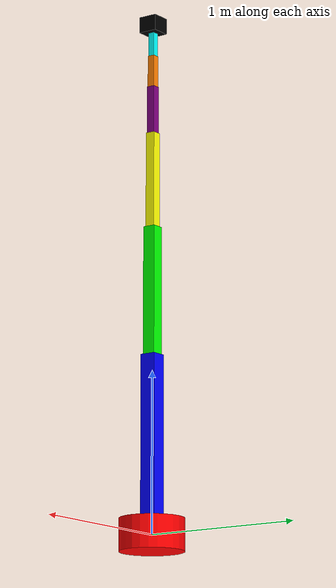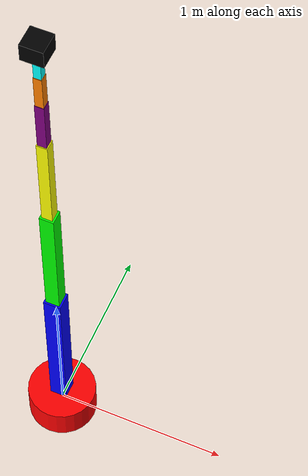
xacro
<?xml version="1.0"?>
<robot xmlns:xacro="http://www.ros.org/wiki/xacro" name="simple_arm">
    <xacro:arg name="initial_positions_file" default="initial_positions.yaml" />

    <!-- Import simple_arm urdf file -->
    <xacro:include filename="$(find my_arm_description)/urdf/simple_arm_moveit_clean.urdf" />

    <!-- Import control_xacro -->
    <xacro:include filename="simple_arm.ros2_control.xacro" />

    <xacro:simple_arm_ros2_control name="FakeSystem" initial_positions_file="$(arg initial_positions_file)"/>

</robot>

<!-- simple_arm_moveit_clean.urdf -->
<!-- |    This document was autogenerated by xacro from /home/sumit-jangra/ros2_ws/src/my_arm_description/urdf/simple_arm_moveit_clean.urdf.xacro | -->
<!-- |    EDITING THIS FILE BY HAND IS NOT RECOMMENDED                                 | -->
<robot name="simple_arm">
  <!-- BASE LINK -->
  <link name="base_link">
    <visual>
      <geometry>
        <cylinder length="0.2" radius="0.2"/>
      </geometry>
      <material name="red">
        <color rgba="1 0 0 1"/>
      </material>
    </visual>
  </link>
  <!-- LINK 1 -->
  <link name="link1">
    <visual>
      <origin rpy="0 0 0" xyz="0 0 0.5"/>
      <geometry>
        <box size="0.1 0.1 1.0"/>
      </geometry>
      <material name="blue">
        <color rgba="0 0 1 1"/>
      </material>
    </visual>
  </link>
  <!-- LINK 2 -->
  <link name="link2">
    <visual>
      <origin rpy="0 0 0" xyz="0 0 0.4"/>
      <geometry>
        <box size="0.08 0.08 0.8"/>
      </geometry>
      <material name="green">
        <color rgba="0 1 0 1"/>
      </material>
    </visual>
  </link>
  <!-- LINK 3 -->
  <link name="link3">
    <visual>
      <origin rpy="0 0 0" xyz="0 0 0.3"/>
      <geometry>
        <box size="0.06 0.06 0.6"/>
      </geometry>
      <material name="yellow">
        <color rgba="1 1 0 1"/>
      </material>
    </visual>
  </link>
  <!-- LINK 4 -->
  <link name="link4">
    <visual>
      <origin rpy="0 0 0" xyz="0 0 0.15"/>
      <geometry>
        <box size="0.05 0.05 0.3"/>
      </geometry>
      <material name="purple">
        <color rgba="0.5 0 0.5 1"/>
      </material>
    </visual>
  </link>
  <!-- LINK 5 -->
  <link name="link5">
    <visual>
      <origin rpy="0 0 0" xyz="0 0 0.1"/>
      <geometry>
        <box size="0.045 0.045 0.2"/>
      </geometry>
      <material name="orange">
        <color rgba="1 0.5 0 1"/>
      </material>
    </visual>
  </link>
  <!-- LINK 6 -->
  <link name="link6">
    <visual>
      <origin rpy="0 0 0" xyz="0 0 0.075"/>
      <geometry>
        <box size="0.04 0.04 0.15"/>
      </geometry>
      <material name="cyan">
        <color rgba="0 1 1 1"/>
      </material>
    </visual>
  </link>
  <!-- END EFFECTOR -->
  <link name="end_effector_link">
    <visual>
      <origin rpy="0 0 0" xyz="0 0 0.05"/>
      <geometry>
        <box size="0.12 0.12 0.1"/>
      </geometry>
      <material name="black">
        <color rgba="0 0 0 1"/>
      </material>
    </visual>
  </link>
  <!-- JOINT 1: BASE ROTATION -->
  <joint name="base_to_link1_joint" type="revolute">
    <parent link="base_link"/>
    <child link="link1"/>
    <origin rpy="0 0 0" xyz="0 0 0.1"/>
    <axis xyz="0 0 1"/>
    <limit effort="10" lower="-3.14" upper="3.14" velocity="1"/>
  </joint>
  <!-- JOINT 2: SHOULDER -->
  <joint name="shoulder_joint" type="revolute">
    <parent link="link1"/>
    <child link="link2"/>
    <origin rpy="0 0 0" xyz="0 0 1.0"/>
    <axis xyz="0 1 0"/>
    <limit effort="10" lower="-1.57" upper="1.57" velocity="1"/>
  </joint>
  <!-- JOINT 3: ELBOW -->
  <joint name="elbow_joint" type="revolute">
    <parent link="link2"/>
    <child link="link3"/>
    <origin rpy="0 0 0" xyz="0 0 0.8"/>
    <axis xyz="0 1 0"/>
    <limit effort="10" lower="-1.57" upper="1.57" velocity="1"/>
  </joint>
  <!-- JOINT 4: WRIST PITCH -->
  <joint name="wrist_pitch_joint" type="revolute">
    <parent link="link3"/>
    <child link="link4"/>
    <origin rpy="0 0 0" xyz="0 0 0.6"/>
    <axis xyz="0 1 0"/>
    <limit effort="10" lower="-1.57" upper="1.57" velocity="1"/>
  </joint>
  <!-- JOINT 5: WRIST ROLL -->
  <joint name="wrist_roll_joint" type="revolute">
    <parent link="link4"/>
    <child link="link5"/>
    <origin rpy="0 0 0" xyz="0 0 0.3"/>
    <axis xyz="0 0 1"/>
    <limit effort="10" lower="-3.14" upper="3.14" velocity="1"/>
  </joint>
  <!-- JOINT 6: WRIST YAW -->
  <joint name="wrist_yaw_joint" type="revolute">
    <parent link="link5"/>
    <child link="link6"/>
    <origin rpy="0 0 0" xyz="0 0 0.2"/>
    <axis xyz="1 0 0"/>
    <limit effort="10" lower="-3.14" upper="3.14" velocity="1"/>
  </joint>
  <!-- FIXED JOINT TO END EFFECTOR -->
  <joint name="link6_to_end_effector" type="fixed">
    <parent link="link6"/>
    <child link="end_effector_link"/>
    <origin rpy="0 0 0" xyz="0 0 0.15"/>
  </joint>
</robot>
